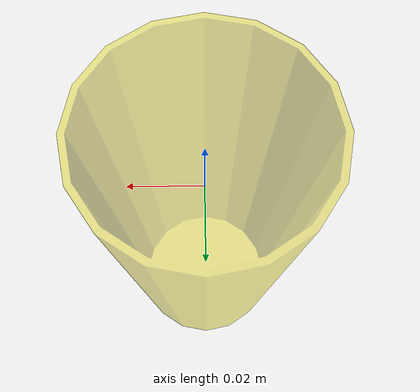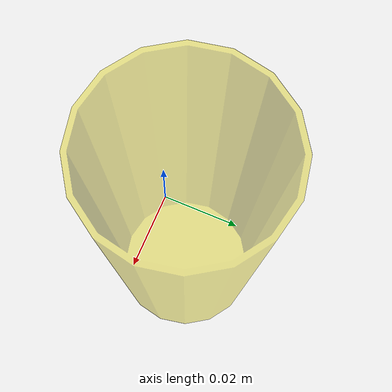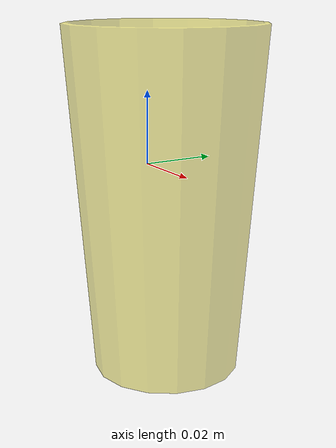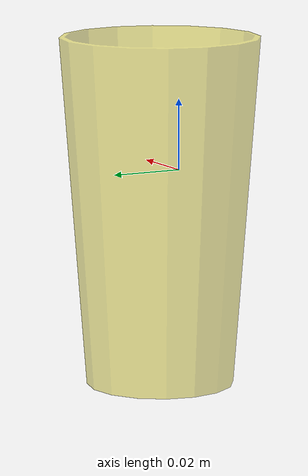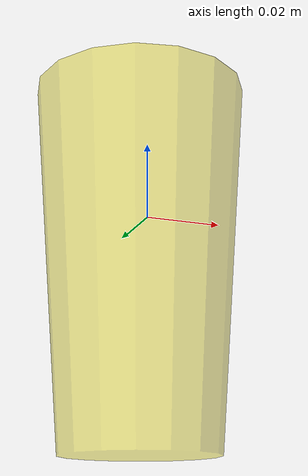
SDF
<?xml version="1.0" ?>
<sdf version="1.5">
  <model name="solo_cup_yellow_small">
    <link name="link">
      <pose>0 0 -.00542 0 0 0</pose>
      <inertial>
        <mass>0.0599</mass>
        <inertia>
          <ixx>0.0003028961527030333</ixx>
          <ixy>0</ixy>
          <ixz>0</ixz>
          <iyy>0.0003028961527030333</iyy>
          <iyz>0</iyz>
          <izz>3.2876352372798436e-05</izz>
        </inertia>
      </inertial>

      <collision name="collision">
        <geometry>
          <mesh>
            <uri>model://solo_cup_large/meshes/solo_cup.dae</uri>
          </mesh>
        </geometry>
        <surface>
          <contact>
            <!-- typical acrylic plastic material properties -->
            <poissons_ratio>0.35</poissons_ratio>
            <elastic_modulus>3.102640776e+09</elastic_modulus>
            <ode>
              <kp>100000</kp>
              <kd>100</kd>
              <max_vel>100.0</max_vel>
              <min_depth>0.001</min_depth>
            </ode>
          </contact>
          <friction>
            <torsional>
              <coefficient>1.0</coefficient>
              <use_patch_radius>0</use_patch_radius>
              <surface_radius>0.01</surface_radius>
            </torsional>
          </friction>
        </surface>
      </collision>

      <visual name="visual">
        <geometry>
          <mesh>
            <uri>model://solo_cup_small/meshes/solo_cup.dae</uri>
          </mesh>
        </geometry>
        <material>
          <script>
            <uri>file://media/materials/scripts/gazebo.material</uri>
            <name>Gazebo/YellowTransparent</name>
          </script>
        </material>
      </visual>

    </link>
  </model>
</sdf>
